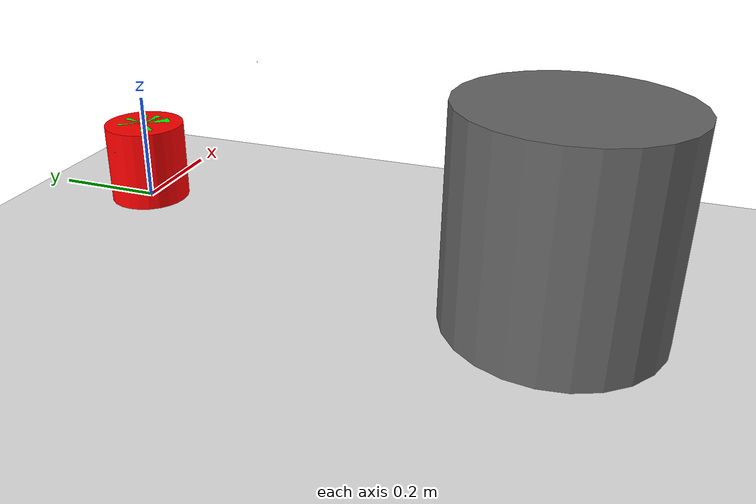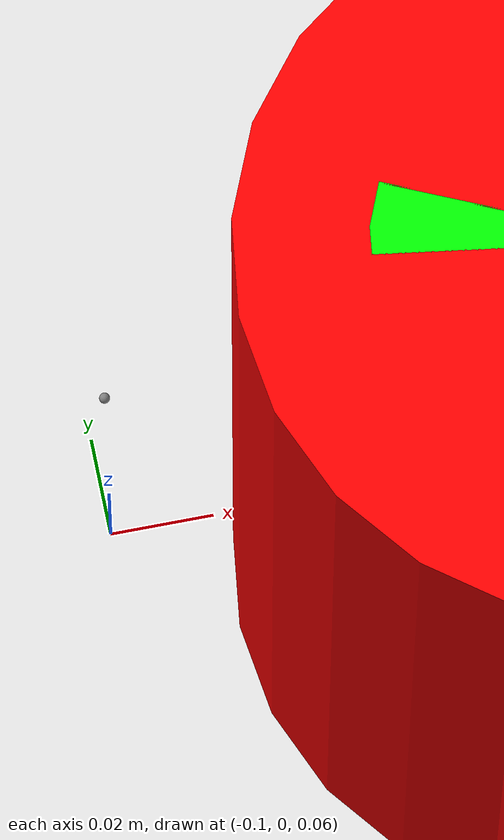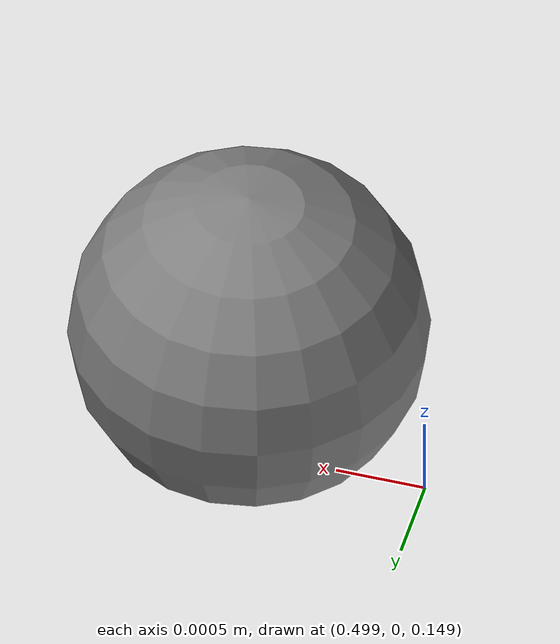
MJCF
<mujoco>
    <option gravity="0 0 0" timestep="0.1"/>
<default>
    <geom rgba="0 0 0 1"/>
</default>
    <worldbody>
 	<light diffuse=".2 .2 .2" pos="0 0 20" dir="0 0 -1" mode="track"/>
	<body>
	  <geom name='floor' pos='0 0 -0.4' size='10 10 .1' mass="10000" type='box' condim='3' rgba=".9 .9 .9 1" />
	<camera name="center" mode="fixed" pos="0 0 5" />
	</body>

    <body name="predator0" pos="0 0 0.075">
            <joint axis="1 0 0" damping="0" frictionloss="0" name="predator0" pos="0 0 0" type="slide"/>
            <joint axis="0 1 0" damping="0" frictionloss="0" name="predator1" pos="0 0 0" type="slide"/>
            <geom type="cylinder" size="0.075 0.075" mass="1" conaffinity="1" solimp="0.9 0.9999 0.001 0.5 1" solref="0.2 0.2" rgba="1 0 0 1"/>
            <site name="predator0" pos="-0.1 0 0.05" type="sphere" size="0.001"/>
    </body>

    <body name="predator1" pos="0 0 0.075">
            <joint axis="1 0 0" damping="0" frictionloss="0" name="predator2" pos="0 0 0" type="slide"/>
            <joint axis="0 1 0" damping="0" frictionloss="0" name="predator3" pos="0 0 0" type="slide"/>
            <geom type="cylinder" size="0.075 0.075" mass="1" conaffinity="1" solimp="0.9 0.9999 0.001 0.5 1" solref="0.2 0.2" rgba="1 0 0 1"/>
            <site name="predator1" pos="-0.1 0 0.05" type="sphere" size="0.001"/>
    </body>

    <body name="prey" pos="0 0 0.075">
            <joint axis="1 0 0" damping="0" frictionloss="0" name="prey0" pos="0 0 0" type="slide"/>
            <joint axis="0 1 0" damping="0" frictionloss="0" name="prey1" pos="0 0 0" type="slide"/>
            <geom type ="cylinder" size="0.05 0.075" mass="1" conaffinity="1" solimp="0.9 0.9999 0.001 0.5 1" solref="0.2 0.2" rgba="0 1 0 1"/>
            <site name="prey" pos="0.5 0 0.075" type="sphere" size="0.001"/>
    </body>

    <body name="block0" pos="0 -0.8 0.075">
            <geom type="cylinder" size="0.2 0.2" mass="1" conaffinity="1" solimp="0.9 0.9999 0.001 0.5 1" solref="0.2 0.2" rgba="0.4 0.4 0.4 1" condim='3'/>

    </body>

    </worldbody>

    <actuator>
        <motor gear="1" joint="predator0"/>
        <motor gear="1" joint="predator1"/>
        <motor gear="1" joint="predator2"/>
        <motor gear="1" joint="predator3"/>
        <motor gear="1" joint="prey0" />
        <motor gear="1" joint="prey1" />
    </actuator>
</mujoco>
